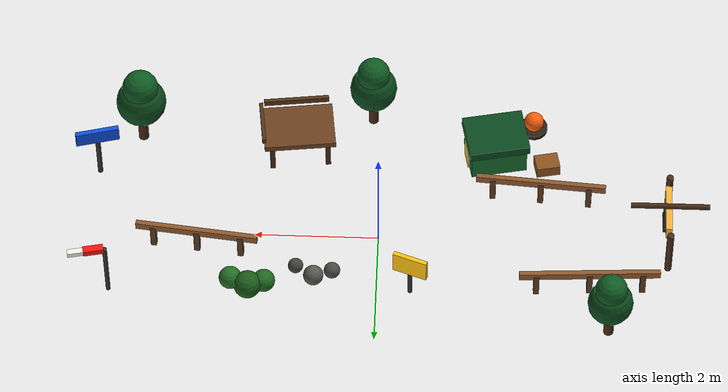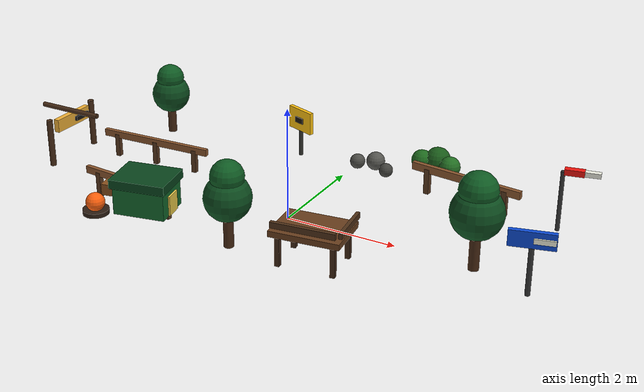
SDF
<?xml version="1.0" ?>
<sdf version="1.6">
  <model name="mountain_showcase_details">
    <static>true</static>

    <!-- Mountain-road guard rails near the start and the city connector. -->
    <link name="trail_guard_rail_start_north">
      <pose>-3.4 0.88 0.36 0 0 0.05</pose>
      <visual name="rail"><geometry><box><size>2.25 0.08 0.13</size></box></geometry><material><ambient>0.55 0.34 0.18 1</ambient><diffuse>0.55 0.34 0.18 1</diffuse></material></visual>
      <visual name="post_1"><pose>-0.85 0 -0.22 0 0 0</pose><geometry><box><size>0.09 0.09 0.44</size></box></geometry><material><ambient>0.35 0.22 0.12 1</ambient><diffuse>0.35 0.22 0.12 1</diffuse></material></visual>
      <visual name="post_2"><pose>0 0 -0.22 0 0 0</pose><geometry><box><size>0.09 0.09 0.44</size></box></geometry><material><ambient>0.35 0.22 0.12 1</ambient><diffuse>0.35 0.22 0.12 1</diffuse></material></visual>
      <visual name="post_3"><pose>0.85 0 -0.22 0 0 0</pose><geometry><box><size>0.09 0.09 0.44</size></box></geometry><material><ambient>0.35 0.22 0.12 1</ambient><diffuse>0.35 0.22 0.12 1</diffuse></material></visual>
    </link>

    <link name="trail_guard_rail_start_south">
      <pose>-2.6 -0.88 0.42 0 0 -0.08</pose>
      <visual name="rail"><geometry><box><size>2.10 0.08 0.13</size></box></geometry><material><ambient>0.55 0.34 0.18 1</ambient><diffuse>0.55 0.34 0.18 1</diffuse></material></visual>
      <visual name="post_1"><pose>-0.78 0 -0.23 0 0 0</pose><geometry><box><size>0.09 0.09 0.46</size></box></geometry><material><ambient>0.35 0.22 0.12 1</ambient><diffuse>0.35 0.22 0.12 1</diffuse></material></visual>
      <visual name="post_2"><pose>0 0 -0.23 0 0 0</pose><geometry><box><size>0.09 0.09 0.46</size></box></geometry><material><ambient>0.35 0.22 0.12 1</ambient><diffuse>0.35 0.22 0.12 1</diffuse></material></visual>
      <visual name="post_3"><pose>0.78 0 -0.23 0 0 0</pose><geometry><box><size>0.09 0.09 0.46</size></box></geometry><material><ambient>0.35 0.22 0.12 1</ambient><diffuse>0.35 0.22 0.12 1</diffuse></material></visual>
    </link>

    <link name="trail_guard_rail_top">
      <pose>2.85 0.78 1.08 0 0 -0.12</pose>
      <visual name="rail"><geometry><box><size>1.95 0.08 0.13</size></box></geometry><material><ambient>0.55 0.34 0.18 1</ambient><diffuse>0.55 0.34 0.18 1</diffuse></material></visual>
      <visual name="post_1"><pose>-0.70 0 -0.22 0 0 0</pose><geometry><box><size>0.09 0.09 0.44</size></box></geometry><material><ambient>0.35 0.22 0.12 1</ambient><diffuse>0.35 0.22 0.12 1</diffuse></material></visual>
      <visual name="post_2"><pose>0 0 -0.22 0 0 0</pose><geometry><box><size>0.09 0.09 0.44</size></box></geometry><material><ambient>0.35 0.22 0.12 1</ambient><diffuse>0.35 0.22 0.12 1</diffuse></material></visual>
      <visual name="post_3"><pose>0.70 0 -0.22 0 0 0</pose><geometry><box><size>0.09 0.09 0.44</size></box></geometry><material><ambient>0.35 0.22 0.12 1</ambient><diffuse>0.35 0.22 0.12 1</diffuse></material></visual>
    </link>

    <!-- Trailhead gate and mountain direction signs. -->
    <link name="trailhead_gate">
      <pose>-4.65 0 0.18 0 0 0</pose>
      <visual name="left_post"><pose>0 0.58 0.44 0 0 0</pose><geometry><cylinder><radius>0.055</radius><length>0.88</length></cylinder></geometry><material><ambient>0.28 0.17 0.09 1</ambient><diffuse>0.28 0.17 0.09 1</diffuse></material></visual>
      <visual name="right_post"><pose>0 -0.58 0.44 0 0 0</pose><geometry><cylinder><radius>0.055</radius><length>0.88</length></cylinder></geometry><material><ambient>0.28 0.17 0.09 1</ambient><diffuse>0.28 0.17 0.09 1</diffuse></material></visual>
      <visual name="top_beam"><pose>0 0 0.88 0 1.5708 0</pose><geometry><cylinder><radius>0.045</radius><length>1.25</length></cylinder></geometry><material><ambient>0.28 0.17 0.09 1</ambient><diffuse>0.28 0.17 0.09 1</diffuse></material></visual>
      <visual name="sign_board"><pose>0.02 0 0.72 0 0 0</pose><geometry><box><size>0.10 0.86 0.24</size></box></geometry><material><ambient>0.95 0.70 0.22 1</ambient><diffuse>0.95 0.70 0.22 1</diffuse></material></visual>
      <visual name="arrow"><pose>0.08 0.20 0.72 0 0 0</pose><geometry><box><size>0.08 0.34 0.08</size></box></geometry><material><ambient>0.08 0.08 0.08 1</ambient><diffuse>0.08 0.08 0.08 1</diffuse></material></visual>
    </link>

    <link name="warning_sign_rocks">
      <pose>-0.55 1.42 0.52 0 0 -0.35</pose>
      <visual name="pole"><pose>0 0 0.28 0 0 0</pose><geometry><cylinder><radius>0.035</radius><length>0.56</length></cylinder></geometry><material><ambient>0.20 0.20 0.18 1</ambient><diffuse>0.20 0.20 0.18 1</diffuse></material></visual>
      <visual name="triangle_base"><pose>0 0 0.68 0 0 0</pose><geometry><box><size>0.56 0.07 0.40</size></box></geometry><material><ambient>1.0 0.76 0.06 1</ambient><diffuse>1.0 0.76 0.06 1</diffuse></material></visual>
      <visual name="symbol"><pose>0 -0.04 0.68 0 0 0</pose><geometry><box><size>0.20 0.04 0.10</size></box></geometry><material><ambient>0.10 0.08 0.04 1</ambient><diffuse>0.10 0.08 0.04 1</diffuse></material></visual>
    </link>

    <link name="city_direction_sign">
      <pose>4.55 -0.95 1.08 0 0 0.25</pose>
      <visual name="pole"><pose>0 0 -0.30 0 0 0</pose><geometry><cylinder><radius>0.04</radius><length>0.86</length></cylinder></geometry><material><ambient>0.20 0.20 0.20 1</ambient><diffuse>0.20 0.20 0.20 1</diffuse></material></visual>
      <visual name="board"><pose>0 0 0.18 0 0 0</pose><geometry><box><size>0.70 0.08 0.26</size></box></geometry><material><ambient>0.05 0.30 0.85 1</ambient><diffuse>0.05 0.30 0.85 1</diffuse></material></visual>
      <visual name="arrow"><pose>0.18 -0.05 0.18 0 0 0</pose><geometry><box><size>0.32 0.04 0.08</size></box></geometry><material><ambient>0.96 0.96 0.88 1</ambient><diffuse>0.96 0.96 0.88 1</diffuse></material></visual>
    </link>

    <!-- Scenic lookout and small camp make the mountain feel inhabited. -->
    <link name="lookout_platform">
      <pose>1.35 -1.55 0.86 0 0 0.12</pose>
      <visual name="deck"><geometry><box><size>1.15 0.82 0.10</size></box></geometry><material><ambient>0.42 0.25 0.12 1</ambient><diffuse>0.42 0.25 0.12 1</diffuse></material></visual>
      <visual name="post_1"><pose>-0.45 -0.32 -0.28 0 0 0</pose><geometry><box><size>0.08 0.08 0.56</size></box></geometry><material><ambient>0.26 0.16 0.09 1</ambient><diffuse>0.26 0.16 0.09 1</diffuse></material></visual>
      <visual name="post_2"><pose>0.45 -0.32 -0.28 0 0 0</pose><geometry><box><size>0.08 0.08 0.56</size></box></geometry><material><ambient>0.26 0.16 0.09 1</ambient><diffuse>0.26 0.16 0.09 1</diffuse></material></visual>
      <visual name="post_3"><pose>-0.45 0.32 -0.28 0 0 0</pose><geometry><box><size>0.08 0.08 0.56</size></box></geometry><material><ambient>0.26 0.16 0.09 1</ambient><diffuse>0.26 0.16 0.09 1</diffuse></material></visual>
      <visual name="post_4"><pose>0.45 0.32 -0.28 0 0 0</pose><geometry><box><size>0.08 0.08 0.56</size></box></geometry><material><ambient>0.26 0.16 0.09 1</ambient><diffuse>0.26 0.16 0.09 1</diffuse></material></visual>
      <visual name="front_rail"><pose>0 -0.42 0.18 0 0 0</pose><geometry><box><size>1.05 0.06 0.10</size></box></geometry><material><ambient>0.32 0.20 0.10 1</ambient><diffuse>0.32 0.20 0.10 1</diffuse></material></visual>
      <visual name="side_rail"><pose>0.58 0 0.18 0 0 0</pose><geometry><box><size>0.06 0.76 0.10</size></box></geometry><material><ambient>0.32 0.20 0.10 1</ambient><diffuse>0.32 0.20 0.10 1</diffuse></material></visual>
    </link>

    <link name="mountain_camp">
      <pose>-1.85 -1.45 0.36 0 0 0.20</pose>
      <visual name="tent_body"><pose>0 0 0.24 0 0 0</pose><geometry><box><size>0.90 0.70 0.48</size></box></geometry><material><ambient>0.08 0.42 0.18 1</ambient><diffuse>0.08 0.42 0.18 1</diffuse></material></visual>
      <visual name="tent_roof"><pose>0 0 0.55 0 0 0</pose><geometry><box><size>0.98 0.78 0.16</size></box></geometry><material><ambient>0.04 0.28 0.12 1</ambient><diffuse>0.04 0.28 0.12 1</diffuse></material></visual>
      <visual name="door"><pose>0.46 0 0.18 0 0 0</pose><geometry><box><size>0.04 0.30 0.34</size></box></geometry><material><ambient>0.95 0.82 0.30 1</ambient><diffuse>0.95 0.82 0.30 1</diffuse></material></visual>
      <visual name="supply_box"><pose>-0.78 0.38 0.10 0 0 0</pose><geometry><box><size>0.38 0.30 0.20</size></box></geometry><material><ambient>0.55 0.32 0.12 1</ambient><diffuse>0.55 0.32 0.12 1</diffuse></material></visual>
      <visual name="campfire_base"><pose>-0.72 -0.44 0.06 0 0 0</pose><geometry><cylinder><radius>0.22</radius><length>0.08</length></cylinder></geometry><material><ambient>0.18 0.12 0.08 1</ambient><diffuse>0.18 0.12 0.08 1</diffuse></material></visual>
      <visual name="campfire_flame"><pose>-0.72 -0.44 0.22 0 0 0</pose><geometry><sphere><radius>0.16</radius></sphere></geometry><material><ambient>1.0 0.38 0.05 1</ambient><diffuse>1.0 0.38 0.05 1</diffuse></material></visual>
    </link>

    <!-- Vegetation and small stones around the mountain road. -->
    <link name="pine_tree_1">
      <pose>-3.7 1.85 0.18 0 0 0</pose>
      <visual name="trunk"><pose>0 0 0.32 0 0 0</pose><geometry><cylinder><radius>0.08</radius><length>0.64</length></cylinder></geometry><material><ambient>0.28 0.16 0.08 1</ambient><diffuse>0.28 0.16 0.08 1</diffuse></material></visual>
      <visual name="crown_low"><pose>0 0 0.78 0 0 0</pose><geometry><sphere><radius>0.36</radius></sphere></geometry><material><ambient>0.05 0.30 0.12 1</ambient><diffuse>0.05 0.30 0.12 1</diffuse></material></visual>
      <visual name="crown_top"><pose>0 0 1.10 0 0 0</pose><geometry><sphere><radius>0.26</radius></sphere></geometry><material><ambient>0.06 0.36 0.14 1</ambient><diffuse>0.06 0.36 0.14 1</diffuse></material></visual>
    </link>

    <link name="pine_tree_2">
      <pose>0.15 -2.05 0.48 0 0 0</pose>
      <visual name="trunk"><pose>0 0 0.34 0 0 0</pose><geometry><cylinder><radius>0.08</radius><length>0.68</length></cylinder></geometry><material><ambient>0.28 0.16 0.08 1</ambient><diffuse>0.28 0.16 0.08 1</diffuse></material></visual>
      <visual name="crown_low"><pose>0 0 0.83 0 0 0</pose><geometry><sphere><radius>0.38</radius></sphere></geometry><material><ambient>0.05 0.30 0.12 1</ambient><diffuse>0.05 0.30 0.12 1</diffuse></material></visual>
      <visual name="crown_top"><pose>0 0 1.18 0 0 0</pose><geometry><sphere><radius>0.27</radius></sphere></geometry><material><ambient>0.06 0.36 0.14 1</ambient><diffuse>0.06 0.36 0.14 1</diffuse></material></visual>
    </link>

    <link name="pine_tree_3">
      <pose>3.85 -1.35 0.78 0 0 0</pose>
      <visual name="trunk"><pose>0 0 0.36 0 0 0</pose><geometry><cylinder><radius>0.08</radius><length>0.72</length></cylinder></geometry><material><ambient>0.28 0.16 0.08 1</ambient><diffuse>0.28 0.16 0.08 1</diffuse></material></visual>
      <visual name="crown_low"><pose>0 0 0.90 0 0 0</pose><geometry><sphere><radius>0.40</radius></sphere></geometry><material><ambient>0.05 0.30 0.12 1</ambient><diffuse>0.05 0.30 0.12 1</diffuse></material></visual>
      <visual name="crown_top"><pose>0 0 1.24 0 0 0</pose><geometry><sphere><radius>0.29</radius></sphere></geometry><material><ambient>0.06 0.36 0.14 1</ambient><diffuse>0.06 0.36 0.14 1</diffuse></material></visual>
    </link>

    <link name="shrub_cluster">
      <pose>2.0 1.55 0.78 0 0 0</pose>
      <visual name="bush_1"><pose>-0.25 0 0.10 0 0 0</pose><geometry><sphere><radius>0.18</radius></sphere></geometry><material><ambient>0.12 0.42 0.12 1</ambient><diffuse>0.12 0.42 0.12 1</diffuse></material></visual>
      <visual name="bush_2"><pose>0.00 0.10 0.12 0 0 0</pose><geometry><sphere><radius>0.22</radius></sphere></geometry><material><ambient>0.10 0.36 0.10 1</ambient><diffuse>0.10 0.36 0.10 1</diffuse></material></visual>
      <visual name="bush_3"><pose>0.28 -0.04 0.10 0 0 0</pose><geometry><sphere><radius>0.18</radius></sphere></geometry><material><ambient>0.14 0.44 0.14 1</ambient><diffuse>0.14 0.44 0.14 1</diffuse></material></visual>
    </link>

    <link name="loose_rocks">
      <pose>0.95 1.22 0.68 0 0 0</pose>
      <visual name="stone_1"><pose>-0.26 0 0.07 0 0 0</pose><geometry><sphere><radius>0.13</radius></sphere></geometry><material><ambient>0.30 0.30 0.28 1</ambient><diffuse>0.30 0.30 0.28 1</diffuse></material></visual>
      <visual name="stone_2"><pose>0.03 0.12 0.09 0 0 0</pose><geometry><sphere><radius>0.16</radius></sphere></geometry><material><ambient>0.34 0.34 0.32 1</ambient><diffuse>0.34 0.34 0.32 1</diffuse></material></visual>
      <visual name="stone_3"><pose>0.32 -0.08 0.06 0 0 0</pose><geometry><sphere><radius>0.12</radius></sphere></geometry><material><ambient>0.26 0.26 0.24 1</ambient><diffuse>0.26 0.26 0.24 1</diffuse></material></visual>
    </link>

    <!-- A small wind sock helps show wind/air theme next to the mountain route. -->
    <link name="mountain_windsock">
      <pose>4.25 1.35 1.15 0 0 0.2</pose>
      <visual name="pole"><pose>0 0 -0.35 0 0 0</pose><geometry><cylinder><radius>0.035</radius><length>1.05</length></cylinder></geometry><material><ambient>0.20 0.20 0.20 1</ambient><diffuse>0.20 0.20 0.20 1</diffuse></material></visual>
      <visual name="sock_red"><pose>0.18 0 0.18 0 0 0</pose><geometry><box><size>0.32 0.12 0.10</size></box></geometry><material><ambient>0.95 0.08 0.05 1</ambient><diffuse>0.95 0.08 0.05 1</diffuse></material></visual>
      <visual name="sock_white"><pose>0.46 0 0.18 0 0 0</pose><geometry><box><size>0.26 0.10 0.08</size></box></geometry><material><ambient>0.95 0.95 0.90 1</ambient><diffuse>0.95 0.95 0.90 1</diffuse></material></visual>
    </link>
  </model>
</sdf>
